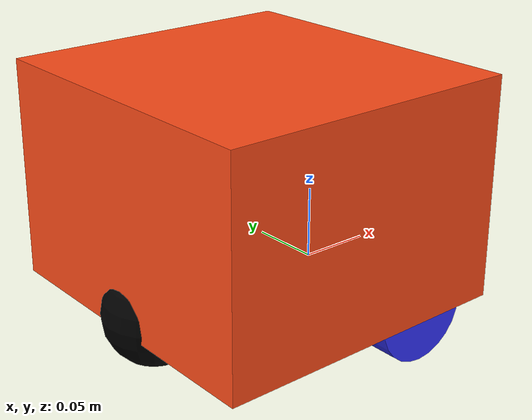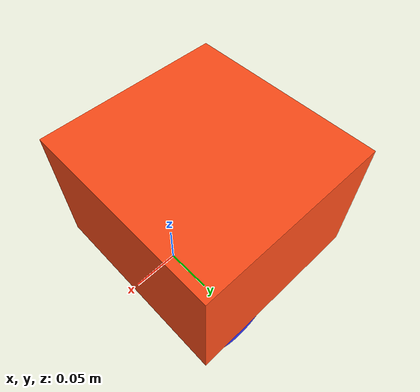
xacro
<?xml version="1.0"?>
<robot xmlns:xacro="http://www.ros.org/wiki/xacro" >

    <xacro:include filename="inertial_macros.xacro"/>

    <material name="white">
        <color rgba="1 1 1 1" />
    </material>

    <material name="orange">
        <color rgba="1 0.3 0.1 1" />
    </material>

    <material name="blue">
        <color rgba="0.2 0.2 1 1" />
    </material>

    <material name="black">
        <color rgba="0 0 0 1" />
    </material>

    <!--BASE LINK-->

    <link name="base_link">

    </link>

    <joint name="chassis_joint" type="fixed">
        <parent link="base_link"/>
        <child link="chassis"/>
        <origin xyz="-0.1 0 0"/>
    </joint>

    <link name="chassis">
        <visual>
            <origin xyz="0.05 0 0.07"/>
            <geometry>
                <box size="0.21 0.22 0.15"/>
            </geometry>
            <material name="orange"/>
        </visual>
        <collision>
            <origin xyz="0.05 0 0.07"/>
            <geometry>
                <box size="0.21 0.22 0.15"/>
            </geometry>
        </collision>
        <xacro:inertial_box mass="0.5" x="0.21" y="0.22" z="0.15">
            <origin xyz="0.05 0 0.07" rpy="0 0 0"/>
        </xacro:inertial_box>
    </link>

    <gazebo reference="chassis">
        <material>Gazebo/Orange</material>
    </gazebo>

    <!--LEFT WHEEL LINK-->

    <joint name="left_wheel_joint" type="continuous">
        <parent link="base_link"/>
        <child link="left_wheel"/>
        <origin xyz="0 0.094 0" rpy="-${pi/2} 0 0"/>
        <axis xyz="0 0 1"/>
    </joint>

    <link name="left_wheel">
        <visual>
            <geometry>
                <cylinder radius="0.034" length="0.025"/>
            </geometry>
            <material name="blue"/>
        </visual>
        <collision>
            <geometry>
                <cylinder radius="0.034" length="0.025"/>
            </geometry>
        </collision>
        <xacro:inertial_cylinder mass="0.075" length="0.025" radius="0.034">
            <origin xyz="0 0 0" rpy="0 0 0"/>
        </xacro:inertial_cylinder>
    </link>

    <gazebo reference="left_wheel">
        <material>Gazebo/Blue</material>
    </gazebo>

     <!--RIGHT WHEEL LINK-->

    <joint name="right_wheel_joint" type="continuous">
        <parent link="base_link"/>
        <child link="right_wheel"/>
        <origin xyz="0 -0.094 0" rpy="${pi/2} 0 0"/>
        <axis xyz="0 0 -1"/>
    </joint>

    <link name="right_wheel">
        <visual>
            <geometry>
                <cylinder radius="0.034" length="0.025"/>
            </geometry>
            <material name="blue"/>
        </visual>
        <collision>
            <geometry>
                <cylinder radius="0.034" length="0.025"/>
            </geometry>
        </collision>
        <xacro:inertial_cylinder mass="0.075" length="0.025" radius="0.034">
            <origin xyz="0 0 0" rpy="0 0 0"/>
        </xacro:inertial_cylinder>
    </link>

    <gazebo reference="right_wheel">
        <material>Gazebo/Blue</material>
    </gazebo>

    <!--CASTER WHEEL LINK-->

    <joint name="caster_wheel_joint" type="fixed">
        <parent link="chassis"/>
        <child link="caster_wheel"/>
        <origin xyz="-0.03 0 0"/>
    </joint>

    <link name="caster_wheel">
        <visual>
            <geometry>
                <sphere radius="0.034"/>
            </geometry>
            <material name="black"/>
        </visual>
        <collision>
            <geometry>
                <sphere radius="0.034"/>
            </geometry>
        </collision>
        <xacro:inertial_sphere mass="0.075" radius="0.034">
            <origin xyz="0 0 0" rpy="0 0 0"/>
        </xacro:inertial_sphere>
    </link>

    <gazebo reference="caster_wheel">
        <material>Gazebo/Black</material>
        <mu1 value="0.001"/>
        <mu2 value="0.001"/>
    </gazebo>

</robot>
